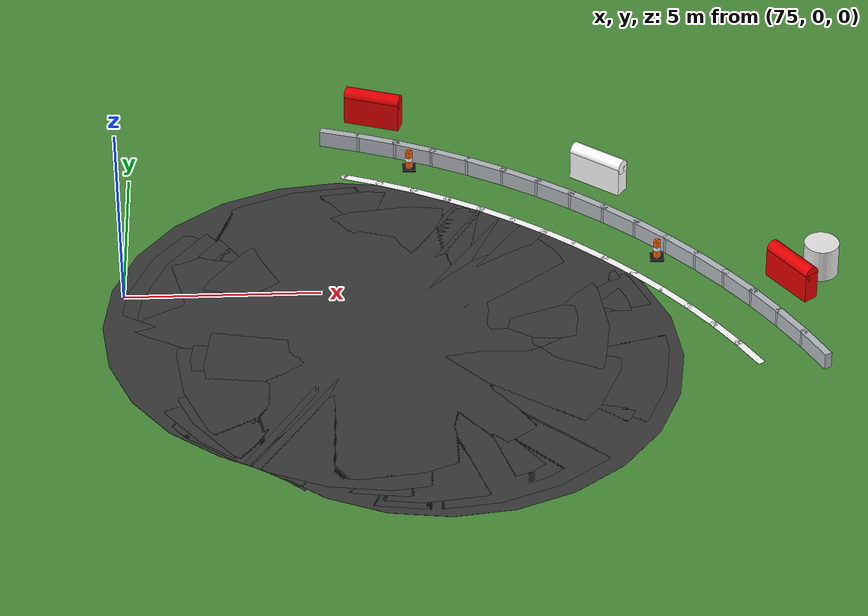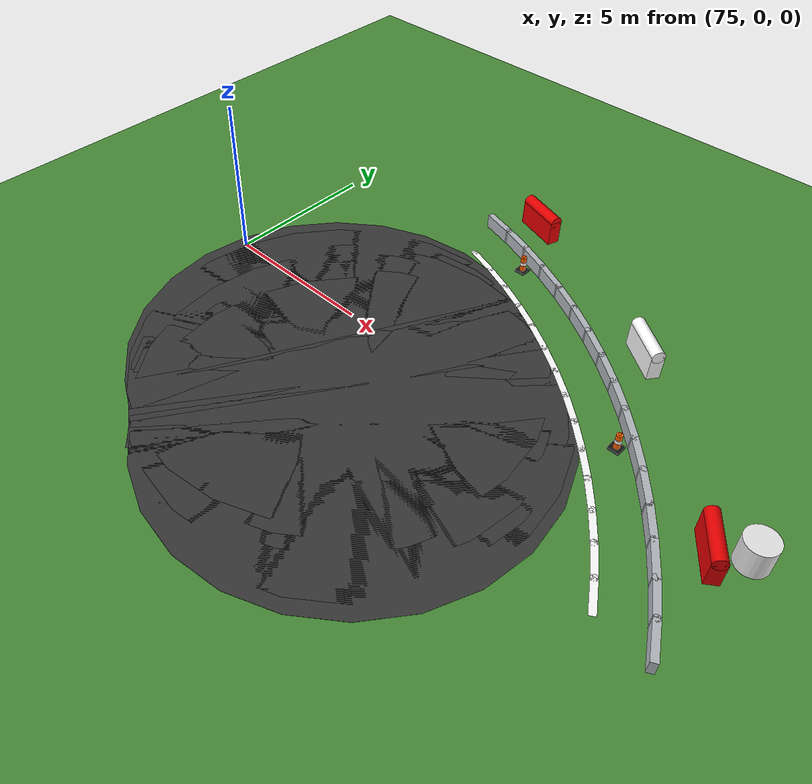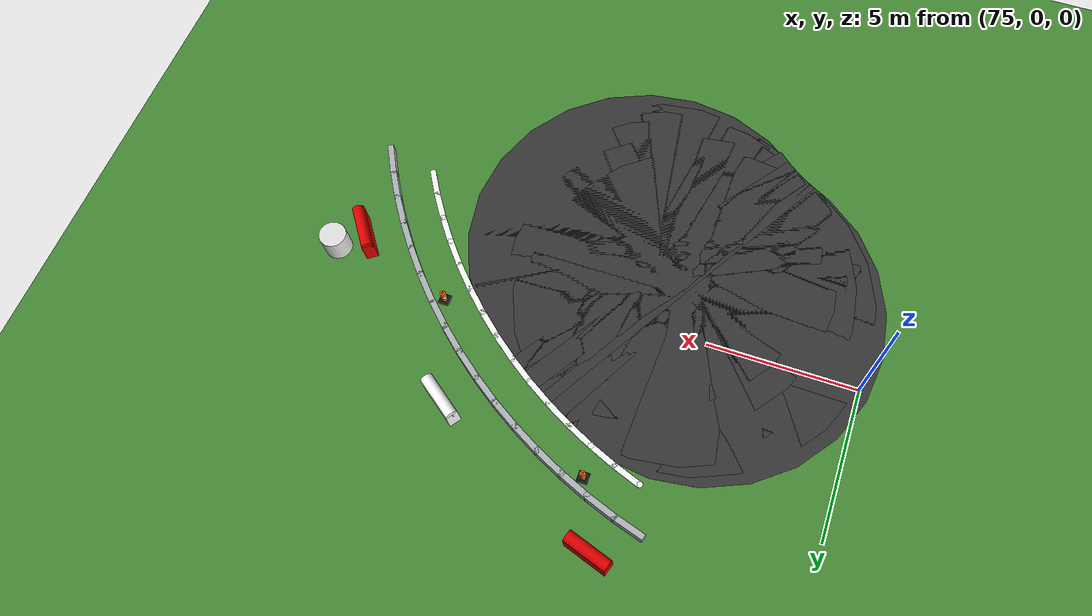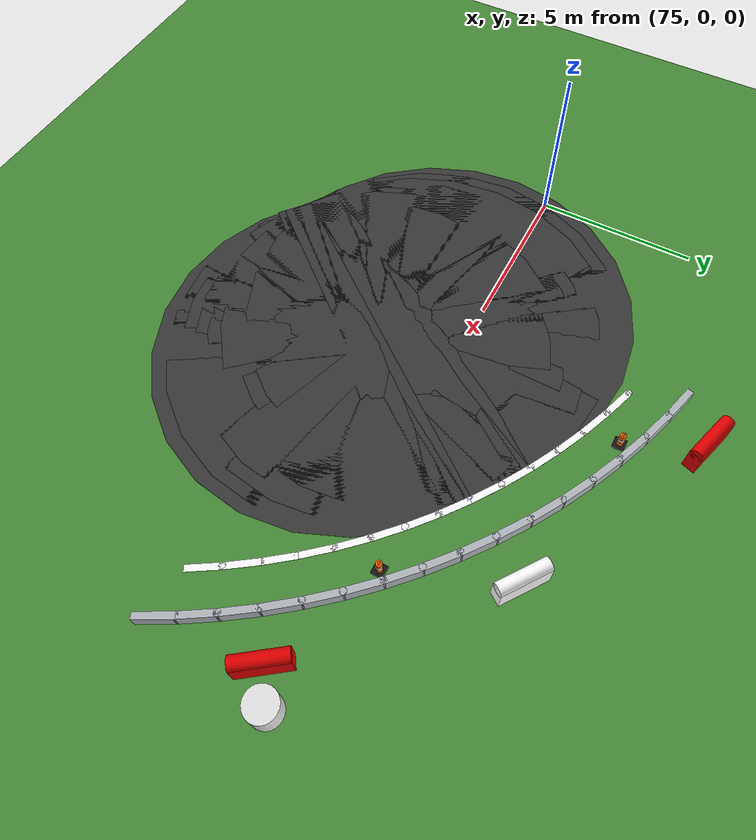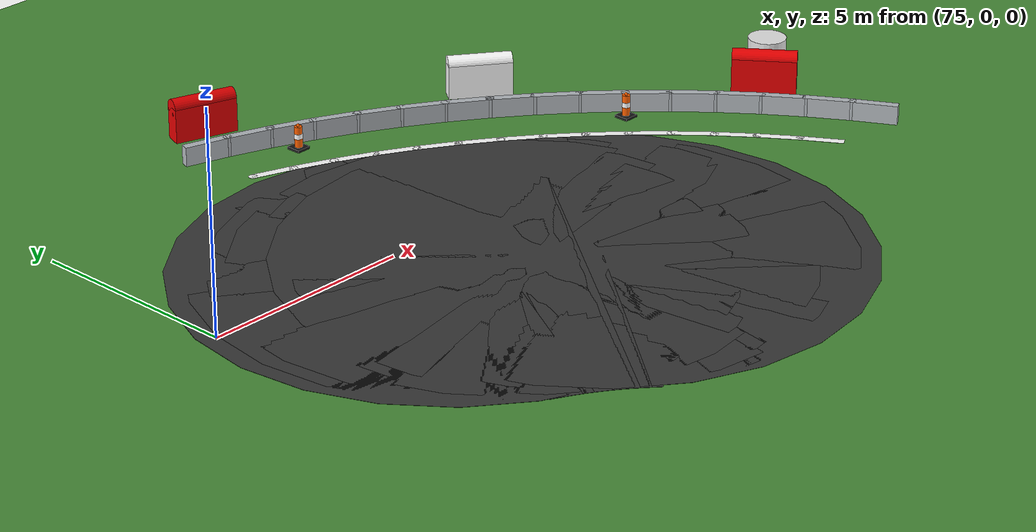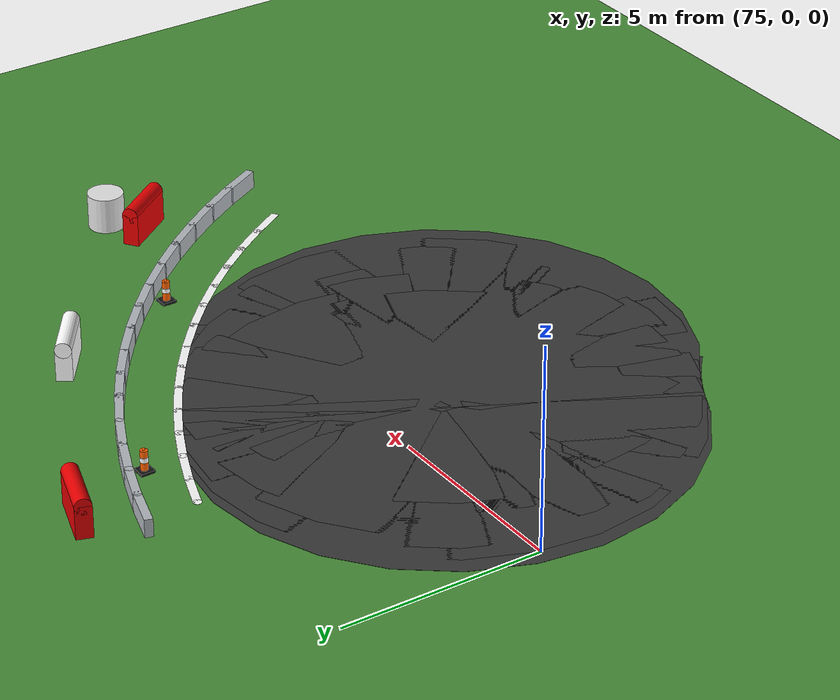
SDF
<sdf version="1.6">
 <world name="sem_silesia_ring_2026">
  <model name="ground_plane">
   <static>true</static>
   <link name="link">
    <collision name="collision">
     <geometry><plane><normal>0 0 1</normal><size>600 600</size></plane></geometry>
     <surface><friction><ode><mu>0.6</mu><mu2>0.6</mu2></ode></friction></surface>
    </collision>
    <visual name="visual">
     <geometry><plane><normal>0 0 1</normal><size>600 600</size></plane></geometry>
     <material><ambient>0.28 0.55 0.22 1</ambient><diffuse>0.28 0.55 0.22 1</diffuse></material>
    </visual>
   </link>
  </model>
  <model name="road_R_s69">
   <static>true</static>
   <pose>83.2007 -3.0661 0.0030 0 0 2.4260</pose>
   <link name="link">
    <visual name="v">
     <geometry><box><size>0.6957 12.0000 0.0060</size></box></geometry>
     <material><ambient>0.22 0.22 0.22 1</ambient><diffuse>0.22 0.22 0.22 1</diffuse></material>
    </visual>
    <collision name="c">
     <geometry><box><size>0.6957 12.0000 0.0060</size></box></geometry>
     <surface><friction><ode><mu>0.9</mu><mu2>0.9</mu2></ode></friction></surface>
    </collision>
   </link>
  </model>
  <model name="road_R_jnt70">
   <static>true</static>
   <pose>83.0348 -2.9244 0.0030 0 0 0</pose>
   <link name="link">
    <visual name="v">
     <geometry><cylinder><radius>6.0000</radius><length>0.0060</length></cylinder></geometry>
     <material><ambient>0.22 0.22 0.22 1</ambient><diffuse>0.22 0.22 0.22 1</diffuse></material>
    </visual>
    <collision name="c">
     <geometry><cylinder><radius>6.0000</radius><length>0.0060</length></cylinder></geometry>
     <surface><friction><ode><mu>0.9</mu><mu2>0.9</mu2></ode></friction></surface>
    </collision>
   </link>
  </model>
  <model name="road_R_s70">
   <static>true</static>
   <pose>82.8665 -2.7857 0.0030 0 0 2.4609</pose>
   <link name="link">
    <visual name="v">
     <geometry><box><size>0.6957 12.0000 0.0060</size></box></geometry>
     <material><ambient>0.22 0.22 0.22 1</ambient><diffuse>0.22 0.22 0.22 1</diffuse></material>
    </visual>
    <collision name="c">
     <geometry><box><size>0.6957 12.0000 0.0060</size></box></geometry>
     <surface><friction><ode><mu>0.9</mu><mu2>0.9</mu2></ode></friction></surface>
    </collision>
   </link>
  </model>
  <model name="road_R_jnt71">
   <static>true</static>
   <pose>82.6958 -2.6499 0.0030 0 0 0</pose>
   <link name="link">
    <visual name="v">
     <geometry><cylinder><radius>6.0000</radius><length>0.0060</length></cylinder></geometry>
     <material><ambient>0.22 0.22 0.22 1</ambient><diffuse>0.22 0.22 0.22 1</diffuse></material>
    </visual>
    <collision name="c">
     <geometry><cylinder><radius>6.0000</radius><length>0.0060</length></cylinder></geometry>
     <surface><friction><ode><mu>0.9</mu><mu2>0.9</mu2></ode></friction></surface>
    </collision>
   </link>
  </model>
  <model name="road_R_s71">
   <static>true</static>
   <pose>82.5227 -2.5171 0.0030 0 0 2.4958</pose>
   <link name="link">
    <visual name="v">
     <geometry><box><size>0.6957 12.0000 0.0060</size></box></geometry>
     <material><ambient>0.22 0.22 0.22 1</ambient><diffuse>0.22 0.22 0.22 1</diffuse></material>
    </visual>
    <collision name="c">
     <geometry><box><size>0.6957 12.0000 0.0060</size></box></geometry>
     <surface><friction><ode><mu>0.9</mu><mu2>0.9</mu2></ode></friction></surface>
    </collision>
   </link>
  </model>
  <model name="road_R_jnt72">
   <static>true</static>
   <pose>82.3473 -2.3873 0.0030 0 0 0</pose>
   <link name="link">
    <visual name="v">
     <geometry><cylinder><radius>6.0000</radius><length>0.0060</length></cylinder></geometry>
     <material><ambient>0.22 0.22 0.22 1</ambient><diffuse>0.22 0.22 0.22 1</diffuse></material>
    </visual>
    <collision name="c">
     <geometry><cylinder><radius>6.0000</radius><length>0.0060</length></cylinder></geometry>
     <surface><friction><ode><mu>0.9</mu><mu2>0.9</mu2></ode></friction></surface>
    </collision>
   </link>
  </model>
  <model name="road_R_s72">
   <static>true</static>
   <pose>82.1697 -2.2606 0.0030 0 0 2.5307</pose>
   <link name="link">
    <visual name="v">
     <geometry><box><size>0.6957 12.0000 0.0060</size></box></geometry>
     <material><ambient>0.22 0.22 0.22 1</ambient><diffuse>0.22 0.22 0.22 1</diffuse></material>
    </visual>
    <collision name="c">
     <geometry><box><size>0.6957 12.0000 0.0060</size></box></geometry>
     <surface><friction><ode><mu>0.9</mu><mu2>0.9</mu2></ode></friction></surface>
    </collision>
   </link>
  </model>
  <model name="road_R_jnt73">
   <static>true</static>
   <pose>81.9899 -2.1370 0.0030 0 0 0</pose>
   <link name="link">
    <visual name="v">
     <geometry><cylinder><radius>6.0000</radius><length>0.0060</length></cylinder></geometry>
     <material><ambient>0.22 0.22 0.22 1</ambient><diffuse>0.22 0.22 0.22 1</diffuse></material>
    </visual>
    <collision name="c">
     <geometry><cylinder><radius>6.0000</radius><length>0.0060</length></cylinder></geometry>
     <surface><friction><ode><mu>0.9</mu><mu2>0.9</mu2></ode></friction></surface>
    </collision>
   </link>
  </model>
  <model name="road_R_s73">
   <static>true</static>
   <pose>81.8080 -2.0166 0.0030 0 0 2.5656</pose>
   <link name="link">
    <visual name="v">
     <geometry><box><size>0.6957 12.0000 0.0060</size></box></geometry>
     <material><ambient>0.22 0.22 0.22 1</ambient><diffuse>0.22 0.22 0.22 1</diffuse></material>
    </visual>
    <collision name="c">
     <geometry><box><size>0.6957 12.0000 0.0060</size></box></geometry>
     <surface><friction><ode><mu>0.9</mu><mu2>0.9</mu2></ode></friction></surface>
    </collision>
   </link>
  </model>
  <model name="road_R_jnt74">
   <static>true</static>
   <pose>81.6240 -1.8994 0.0030 0 0 0</pose>
   <link name="link">
    <visual name="v">
     <geometry><cylinder><radius>6.0000</radius><length>0.0060</length></cylinder></geometry>
     <material><ambient>0.22 0.22 0.22 1</ambient><diffuse>0.22 0.22 0.22 1</diffuse></material>
    </visual>
    <collision name="c">
     <geometry><cylinder><radius>6.0000</radius><length>0.0060</length></cylinder></geometry>
     <surface><friction><ode><mu>0.9</mu><mu2>0.9</mu2></ode></friction></surface>
    </collision>
   </link>
  </model>
  <model name="road_R_s74">
   <static>true</static>
   <pose>81.4380 -1.7854 0.0030 0 0 2.6005</pose>
   <link name="link">
    <visual name="v">
     <geometry><box><size>0.6957 12.0000 0.0060</size></box></geometry>
     <material><ambient>0.22 0.22 0.22 1</ambient><diffuse>0.22 0.22 0.22 1</diffuse></material>
    </visual>
    <collision name="c">
     <geometry><box><size>0.6957 12.0000 0.0060</size></box></geometry>
     <surface><friction><ode><mu>0.9</mu><mu2>0.9</mu2></ode></friction></surface>
    </collision>
   </link>
  </model>
  <model name="road_R_jnt75">
   <static>true</static>
   <pose>81.2500 -1.6747 0.0030 0 0 0</pose>
   <link name="link">
    <visual name="v">
     <geometry><cylinder><radius>6.0000</radius><length>0.0060</length></cylinder></geometry>
     <material><ambient>0.22 0.22 0.22 1</ambient><diffuse>0.22 0.22 0.22 1</diffuse></material>
    </visual>
    <collision name="c">
     <geometry><cylinder><radius>6.0000</radius><length>0.0060</length></cylinder></geometry>
     <surface><friction><ode><mu>0.9</mu><mu2>0.9</mu2></ode></friction></surface>
    </collision>
   </link>
  </model>
  <model name="road_R_s75">
   <static>true</static>
   <pose>81.0601 -1.5673 0.0030 0 0 2.6354</pose>
   <link name="link">
    <visual name="v">
     <geometry><box><size>0.6957 12.0000 0.0060</size></box></geometry>
     <material><ambient>0.22 0.22 0.22 1</ambient><diffuse>0.22 0.22 0.22 1</diffuse></material>
    </visual>
    <collision name="c">
     <geometry><box><size>0.6957 12.0000 0.0060</size></box></geometry>
     <surface><friction><ode><mu>0.9</mu><mu2>0.9</mu2></ode></friction></surface>
    </collision>
   </link>
  </model>
  <model name="road_R_jnt76">
   <static>true</static>
   <pose>80.8684 -1.4632 0.0030 0 0 0</pose>
   <link name="link">
    <visual name="v">
     <geometry><cylinder><radius>6.0000</radius><length>0.0060</length></cylinder></geometry>
     <material><ambient>0.22 0.22 0.22 1</ambient><diffuse>0.22 0.22 0.22 1</diffuse></material>
    </visual>
    <collision name="c">
     <geometry><cylinder><radius>6.0000</radius><length>0.0060</length></cylinder></geometry>
     <surface><friction><ode><mu>0.9</mu><mu2>0.9</mu2></ode></friction></surface>
    </collision>
   </link>
  </model>
  <model name="road_R_s76">
   <static>true</static>
   <pose>80.6749 -1.3624 0.0030 0 0 2.6704</pose>
   <link name="link">
    <visual name="v">
     <geometry><box><size>0.6957 12.0000 0.0060</size></box></geometry>
     <material><ambient>0.22 0.22 0.22 1</ambient><diffuse>0.22 0.22 0.22 1</diffuse></material>
    </visual>
    <collision name="c">
     <geometry><box><size>0.6957 12.0000 0.0060</size></box></geometry>
     <surface><friction><ode><mu>0.9</mu><mu2>0.9</mu2></ode></friction></surface>
    </collision>
   </link>
  </model>
  <model name="road_R_jnt77">
   <static>true</static>
   <pose>80.4796 -1.2651 0.0030 0 0 0</pose>
   <link name="link">
    <visual name="v">
     <geometry><cylinder><radius>6.0000</radius><length>0.0060</length></cylinder></geometry>
     <material><ambient>0.22 0.22 0.22 1</ambient><diffuse>0.22 0.22 0.22 1</diffuse></material>
    </visual>
    <collision name="c">
     <geometry><cylinder><radius>6.0000</radius><length>0.0060</length></cylinder></geometry>
     <surface><friction><ode><mu>0.9</mu><mu2>0.9</mu2></ode></friction></surface>
    </collision>
   </link>
  </model>
  <model name="wl_Ro_s40">
   <static>true</static>
   <pose>90.6886 -2.8860 0.0050 0 0 2.1206</pose>
   <link name="link">
    <visual name="v">
     <geometry><box><size>1.0185 0.2000 0.0040</size></box></geometry>
     <material><ambient>1 1 1 1</ambient><diffuse>1 1 1 1</diffuse></material>
    </visual>
    <collision name="c">
     <geometry><box><size>1.0185 0.2000 0.0040</size></box></geometry>
     <surface><friction><ode><mu>0.9</mu><mu2>0.9</mu2></ode></friction></surface>
    </collision>
   </link>
  </model>
  <model name="wl_Ro_jnt41">
   <static>true</static>
   <pose>90.4315 -2.4786 0.0050 0 0 0</pose>
   <link name="link">
    <visual name="v">
     <geometry><cylinder><radius>0.1000</radius><length>0.0040</length></cylinder></geometry>
     <material><ambient>1 1 1 1</ambient><diffuse>1 1 1 1</diffuse></material>
    </visual>
    <collision name="c">
     <geometry><cylinder><radius>0.1000</radius><length>0.0040</length></cylinder></geometry>
     <surface><friction><ode><mu>0.9</mu><mu2>0.9</mu2></ode></friction></surface>
    </collision>
   </link>
  </model>
  <model name="wl_Ro_s41">
   <static>true</static>
   <pose>90.1639 -2.0781 0.0050 0 0 2.1729</pose>
   <link name="link">
    <visual name="v">
     <geometry><box><size>1.0185 0.2000 0.0040</size></box></geometry>
     <material><ambient>1 1 1 1</ambient><diffuse>1 1 1 1</diffuse></material>
    </visual>
    <collision name="c">
     <geometry><box><size>1.0185 0.2000 0.0040</size></box></geometry>
     <surface><friction><ode><mu>0.9</mu><mu2>0.9</mu2></ode></friction></surface>
    </collision>
   </link>
  </model>
  <model name="wl_Ro_jnt42">
   <static>true</static>
   <pose>89.8859 -1.6848 0.0050 0 0 0</pose>
   <link name="link">
    <visual name="v">
     <geometry><cylinder><radius>0.1000</radius><length>0.0040</length></cylinder></geometry>
     <material><ambient>1 1 1 1</ambient><diffuse>1 1 1 1</diffuse></material>
    </visual>
    <collision name="c">
     <geometry><cylinder><radius>0.1000</radius><length>0.0040</length></cylinder></geometry>
     <surface><friction><ode><mu>0.9</mu><mu2>0.9</mu2></ode></friction></surface>
    </collision>
   </link>
  </model>
  <model name="wl_Ro_s42">
   <static>true</static>
   <pose>89.5977 -1.2988 0.0050 0 0 2.2253</pose>
   <link name="link">
    <visual name="v">
     <geometry><box><size>1.0185 0.2000 0.0040</size></box></geometry>
     <material><ambient>1 1 1 1</ambient><diffuse>1 1 1 1</diffuse></material>
    </visual>
    <collision name="c">
     <geometry><box><size>1.0185 0.2000 0.0040</size></box></geometry>
     <surface><friction><ode><mu>0.9</mu><mu2>0.9</mu2></ode></friction></surface>
    </collision>
   </link>
  </model>
  <model name="wl_Ro_jnt43">
   <static>true</static>
   <pose>89.2995 -0.9205 0.0050 0 0 0</pose>
   <link name="link">
    <visual name="v">
     <geometry><cylinder><radius>0.1000</radius><length>0.0040</length></cylinder></geometry>
     <material><ambient>1 1 1 1</ambient><diffuse>1 1 1 1</diffuse></material>
    </visual>
    <collision name="c">
     <geometry><cylinder><radius>0.1000</radius><length>0.0040</length></cylinder></geometry>
     <surface><friction><ode><mu>0.9</mu><mu2>0.9</mu2></ode></friction></surface>
    </collision>
   </link>
  </model>
  <model name="wl_Ro_s43">
   <static>true</static>
   <pose>88.9915 -0.5502 0.0050 0 0 2.2777</pose>
   <link name="link">
    <visual name="v">
     <geometry><box><size>1.0185 0.2000 0.0040</size></box></geometry>
     <material><ambient>1 1 1 1</ambient><diffuse>1 1 1 1</diffuse></material>
    </visual>
    <collision name="c">
     <geometry><box><size>1.0185 0.2000 0.0040</size></box></geometry>
     <surface><friction><ode><mu>0.9</mu><mu2>0.9</mu2></ode></friction></surface>
    </collision>
   </link>
  </model>
  <model name="wl_Ro_jnt44">
   <static>true</static>
   <pose>88.6739 -0.1880 0.0050 0 0 0</pose>
   <link name="link">
    <visual name="v">
     <geometry><cylinder><radius>0.1000</radius><length>0.0040</length></cylinder></geometry>
     <material><ambient>1 1 1 1</ambient><diffuse>1 1 1 1</diffuse></material>
    </visual>
    <collision name="c">
     <geometry><cylinder><radius>0.1000</radius><length>0.0040</length></cylinder></geometry>
     <surface><friction><ode><mu>0.9</mu><mu2>0.9</mu2></ode></friction></surface>
    </collision>
   </link>
  </model>
  <model name="wl_Ro_s44">
   <static>true</static>
   <pose>88.3469 0.1657 0.0050 0 0 2.3300</pose>
   <link name="link">
    <visual name="v">
     <geometry><box><size>1.0185 0.2000 0.0040</size></box></geometry>
     <material><ambient>1 1 1 1</ambient><diffuse>1 1 1 1</diffuse></material>
    </visual>
    <collision name="c">
     <geometry><box><size>1.0185 0.2000 0.0040</size></box></geometry>
     <surface><friction><ode><mu>0.9</mu><mu2>0.9</mu2></ode></friction></surface>
    </collision>
   </link>
  </model>
  <model name="wl_Ro_jnt45">
   <static>true</static>
   <pose>88.0108 0.5108 0.0050 0 0 0</pose>
   <link name="link">
    <visual name="v">
     <geometry><cylinder><radius>0.1000</radius><length>0.0040</length></cylinder></geometry>
     <material><ambient>1 1 1 1</ambient><diffuse>1 1 1 1</diffuse></material>
    </visual>
    <collision name="c">
     <geometry><cylinder><radius>0.1000</radius><length>0.0040</length></cylinder></geometry>
     <surface><friction><ode><mu>0.9</mu><mu2>0.9</mu2></ode></friction></surface>
    </collision>
   </link>
  </model>
  <model name="wl_Ro_s45">
   <static>true</static>
   <pose>87.6657 0.8469 0.0050 0 0 2.3824</pose>
   <link name="link">
    <visual name="v">
     <geometry><box><size>1.0185 0.2000 0.0040</size></box></geometry>
     <material><ambient>1 1 1 1</ambient><diffuse>1 1 1 1</diffuse></material>
    </visual>
    <collision name="c">
     <geometry><box><size>1.0185 0.2000 0.0040</size></box></geometry>
     <surface><friction><ode><mu>0.9</mu><mu2>0.9</mu2></ode></friction></surface>
    </collision>
   </link>
  </model>
  <model name="wl_Ro_jnt46">
   <static>true</static>
   <pose>87.3120 1.1739 0.0050 0 0 0</pose>
   <link name="link">
    <visual name="v">
     <geometry><cylinder><radius>0.1000</radius><length>0.0040</length></cylinder></geometry>
     <material><ambient>1 1 1 1</ambient><diffuse>1 1 1 1</diffuse></material>
    </visual>
    <collision name="c">
     <geometry><cylinder><radius>0.1000</radius><length>0.0040</length></cylinder></geometry>
     <surface><friction><ode><mu>0.9</mu><mu2>0.9</mu2></ode></friction></surface>
    </collision>
   </link>
  </model>
  <model name="wl_Ro_s46">
   <static>true</static>
   <pose>86.9498 1.4915 0.0050 0 0 2.4347</pose>
   <link name="link">
    <visual name="v">
     <geometry><box><size>1.0185 0.2000 0.0040</size></box></geometry>
     <material><ambient>1 1 1 1</ambient><diffuse>1 1 1 1</diffuse></material>
    </visual>
    <collision name="c">
     <geometry><box><size>1.0185 0.2000 0.0040</size></box></geometry>
     <surface><friction><ode><mu>0.9</mu><mu2>0.9</mu2></ode></friction></surface>
    </collision>
   </link>
  </model>
  <model name="wl_Ro_jnt47">
   <static>true</static>
   <pose>86.5795 1.7995 0.0050 0 0 0</pose>
   <link name="link">
    <visual name="v">
     <geometry><cylinder><radius>0.1000</radius><length>0.0040</length></cylinder></geometry>
     <material><ambient>1 1 1 1</ambient><diffuse>1 1 1 1</diffuse></material>
    </visual>
    <collision name="c">
     <geometry><cylinder><radius>0.1000</radius><length>0.0040</length></cylinder></geometry>
     <surface><friction><ode><mu>0.9</mu><mu2>0.9</mu2></ode></friction></surface>
    </collision>
   </link>
  </model>
  <model name="wl_Ro_s47">
   <static>true</static>
   <pose>86.2012 2.0977 0.0050 0 0 2.4871</pose>
   <link name="link">
    <visual name="v">
     <geometry><box><size>1.0185 0.2000 0.0040</size></box></geometry>
     <material><ambient>1 1 1 1</ambient><diffuse>1 1 1 1</diffuse></material>
    </visual>
    <collision name="c">
     <geometry><box><size>1.0185 0.2000 0.0040</size></box></geometry>
     <surface><friction><ode><mu>0.9</mu><mu2>0.9</mu2></ode></friction></surface>
    </collision>
   </link>
  </model>
  <model name="wl_Ro_jnt48">
   <static>true</static>
   <pose>85.8152 2.3859 0.0050 0 0 0</pose>
   <link name="link">
    <visual name="v">
     <geometry><cylinder><radius>0.1000</radius><length>0.0040</length></cylinder></geometry>
     <material><ambient>1 1 1 1</ambient><diffuse>1 1 1 1</diffuse></material>
    </visual>
    <collision name="c">
     <geometry><cylinder><radius>0.1000</radius><length>0.0040</length></cylinder></geometry>
     <surface><friction><ode><mu>0.9</mu><mu2>0.9</mu2></ode></friction></surface>
    </collision>
   </link>
  </model>
  <model name="wl_Ro_s48">
   <static>true</static>
   <pose>85.4219 2.6639 0.0050 0 0 2.5395</pose>
   <link name="link">
    <visual name="v">
     <geometry><box><size>1.0185 0.2000 0.0040</size></box></geometry>
     <material><ambient>1 1 1 1</ambient><diffuse>1 1 1 1</diffuse></material>
    </visual>
    <collision name="c">
     <geometry><box><size>1.0185 0.2000 0.0040</size></box></geometry>
     <surface><friction><ode><mu>0.9</mu><mu2>0.9</mu2></ode></friction></surface>
    </collision>
   </link>
  </model>
  <model name="wl_Ro_jnt49">
   <static>true</static>
   <pose>85.0214 2.9315 0.0050 0 0 0</pose>
   <link name="link">
    <visual name="v">
     <geometry><cylinder><radius>0.1000</radius><length>0.0040</length></cylinder></geometry>
     <material><ambient>1 1 1 1</ambient><diffuse>1 1 1 1</diffuse></material>
    </visual>
    <collision name="c">
     <geometry><cylinder><radius>0.1000</radius><length>0.0040</length></cylinder></geometry>
     <surface><friction><ode><mu>0.9</mu><mu2>0.9</mu2></ode></friction></surface>
    </collision>
   </link>
  </model>
  <model name="wl_Ro_s49">
   <static>true</static>
   <pose>84.6140 3.1886 0.0050 0 0 2.5918</pose>
   <link name="link">
    <visual name="v">
     <geometry><box><size>1.0185 0.2000 0.0040</size></box></geometry>
     <material><ambient>1 1 1 1</ambient><diffuse>1 1 1 1</diffuse></material>
    </visual>
    <collision name="c">
     <geometry><box><size>1.0185 0.2000 0.0040</size></box></geometry>
     <surface><friction><ode><mu>0.9</mu><mu2>0.9</mu2></ode></friction></surface>
    </collision>
   </link>
  </model>
  <model name="wl_Ro_jnt50">
   <static>true</static>
   <pose>84.2000 3.4349 0.0050 0 0 0</pose>
   <link name="link">
    <visual name="v">
     <geometry><cylinder><radius>0.1000</radius><length>0.0040</length></cylinder></geometry>
     <material><ambient>1 1 1 1</ambient><diffuse>1 1 1 1</diffuse></material>
    </visual>
    <collision name="c">
     <geometry><cylinder><radius>0.1000</radius><length>0.0040</length></cylinder></geometry>
     <surface><friction><ode><mu>0.9</mu><mu2>0.9</mu2></ode></friction></surface>
    </collision>
   </link>
  </model>
  <model name="wl_Ro_s50">
   <static>true</static>
   <pose>83.7797 3.6702 0.0050 0 0 2.6442</pose>
   <link name="link">
    <visual name="v">
     <geometry><box><size>1.0185 0.2000 0.0040</size></box></geometry>
     <material><ambient>1 1 1 1</ambient><diffuse>1 1 1 1</diffuse></material>
    </visual>
    <collision name="c">
     <geometry><box><size>1.0185 0.2000 0.0040</size></box></geometry>
     <surface><friction><ode><mu>0.9</mu><mu2>0.9</mu2></ode></friction></surface>
    </collision>
   </link>
  </model>
  <model name="wl_Ro_jnt51">
   <static>true</static>
   <pose>83.3534 3.8945 0.0050 0 0 0</pose>
   <link name="link">
    <visual name="v">
     <geometry><cylinder><radius>0.1000</radius><length>0.0040</length></cylinder></geometry>
     <material><ambient>1 1 1 1</ambient><diffuse>1 1 1 1</diffuse></material>
    </visual>
    <collision name="c">
     <geometry><cylinder><radius>0.1000</radius><length>0.0040</length></cylinder></geometry>
     <surface><friction><ode><mu>0.9</mu><mu2>0.9</mu2></ode></friction></surface>
    </collision>
   </link>
  </model>
  <model name="wl_Ro_s51">
   <static>true</static>
   <pose>82.9214 4.1076 0.0050 0 0 2.6965</pose>
   <link name="link">
    <visual name="v">
     <geometry><box><size>1.0185 0.2000 0.0040</size></box></geometry>
     <material><ambient>1 1 1 1</ambient><diffuse>1 1 1 1</diffuse></material>
    </visual>
    <collision name="c">
     <geometry><box><size>1.0185 0.2000 0.0040</size></box></geometry>
     <surface><friction><ode><mu>0.9</mu><mu2>0.9</mu2></ode></friction></surface>
    </collision>
   </link>
  </model>
  <model name="wl_Ro_jnt52">
   <static>true</static>
   <pose>82.4840 4.3092 0.0050 0 0 0</pose>
   <link name="link">
    <visual name="v">
     <geometry><cylinder><radius>0.1000</radius><length>0.0040</length></cylinder></geometry>
     <material><ambient>1 1 1 1</ambient><diffuse>1 1 1 1</diffuse></material>
    </visual>
    <collision name="c">
     <geometry><cylinder><radius>0.1000</radius><length>0.0040</length></cylinder></geometry>
     <surface><friction><ode><mu>0.9</mu><mu2>0.9</mu2></ode></friction></surface>
    </collision>
   </link>
  </model>
  <model name="wl_Ro_s52">
   <static>true</static>
   <pose>82.0414 4.4994 0.0050 0 0 2.7489</pose>
   <link name="link">
    <visual name="v">
     <geometry><box><size>1.0185 0.2000 0.0040</size></box></geometry>
     <material><ambient>1 1 1 1</ambient><diffuse>1 1 1 1</diffuse></material>
    </visual>
    <collision name="c">
     <geometry><box><size>1.0185 0.2000 0.0040</size></box></geometry>
     <surface><friction><ode><mu>0.9</mu><mu2>0.9</mu2></ode></friction></surface>
    </collision>
   </link>
  </model>
  <model name="wl_Ro_jnt53">
   <static>true</static>
   <pose>81.5940 4.6779 0.0050 0 0 0</pose>
   <link name="link">
    <visual name="v">
     <geometry><cylinder><radius>0.1000</radius><length>0.0040</length></cylinder></geometry>
     <material><ambient>1 1 1 1</ambient><diffuse>1 1 1 1</diffuse></material>
    </visual>
    <collision name="c">
     <geometry><cylinder><radius>0.1000</radius><length>0.0040</length></cylinder></geometry>
     <surface><friction><ode><mu>0.9</mu><mu2>0.9</mu2></ode></friction></surface>
    </collision>
   </link>
  </model>
  <model name="wl_Ro_s53">
   <static>true</static>
   <pose>81.1420 4.8446 0.0050 0 0 2.8013</pose>
   <link name="link">
    <visual name="v">
     <geometry><box><size>1.0185 0.2000 0.0040</size></box></geometry>
     <material><ambient>1 1 1 1</ambient><diffuse>1 1 1 1</diffuse></material>
    </visual>
    <collision name="c">
     <geometry><box><size>1.0185 0.2000 0.0040</size></box></geometry>
     <surface><friction><ode><mu>0.9</mu><mu2>0.9</mu2></ode></friction></surface>
    </collision>
   </link>
  </model>
  <model name="wl_Ro_jnt54">
   <static>true</static>
   <pose>80.6859 4.9994 0.0050 0 0 0</pose>
   <link name="link">
    <visual name="v">
     <geometry><cylinder><radius>0.1000</radius><length>0.0040</length></cylinder></geometry>
     <material><ambient>1 1 1 1</ambient><diffuse>1 1 1 1</diffuse></material>
    </visual>
    <collision name="c">
     <geometry><cylinder><radius>0.1000</radius><length>0.0040</length></cylinder></geometry>
     <surface><friction><ode><mu>0.9</mu><mu2>0.9</mu2></ode></friction></surface>
    </collision>
   </link>
  </model>
  <model name="arm_Ro_s39">
   <static>true</static>
   <pose>92.3127 -3.1000 0.2250 0 0 2.0682</pose>
   <link name="link">
    <visual name="v">
     <geometry><box><size>1.0866 0.2000 0.4500</size></box></geometry>
     <material><ambient>0.70 0.72 0.74 1</ambient><diffuse>0.70 0.72 0.74 1</diffuse></material>
    </visual>
    <collision name="c">
     <geometry><box><size>1.0866 0.2000 0.4500</size></box></geometry>
     <surface><friction><ode><mu>0.9</mu><mu2>0.9</mu2></ode></friction></surface>
    </collision>
   </link>
  </model>
  <model name="arm_Ro_jnt40">
   <static>true</static>
   <pose>92.0607 -2.6500 0.2250 0 0 0</pose>
   <link name="link">
    <visual name="v">
     <geometry><cylinder><radius>0.1000</radius><length>0.4500</length></cylinder></geometry>
     <material><ambient>0.70 0.72 0.74 1</ambient><diffuse>0.70 0.72 0.74 1</diffuse></material>
    </visual>
    <collision name="c">
     <geometry><cylinder><radius>0.1000</radius><length>0.4500</length></cylinder></geometry>
     <surface><friction><ode><mu>0.9</mu><mu2>0.9</mu2></ode></friction></surface>
    </collision>
   </link>
  </model>
  <model name="arm_Ro_s40">
   <static>true</static>
   <pose>91.7970 -2.2068 0.2250 0 0 2.1206</pose>
   <link name="link">
    <visual name="v">
     <geometry><box><size>1.0866 0.2000 0.4500</size></box></geometry>
     <material><ambient>0.70 0.72 0.74 1</ambient><diffuse>0.70 0.72 0.74 1</diffuse></material>
    </visual>
    <collision name="c">
     <geometry><box><size>1.0866 0.2000 0.4500</size></box></geometry>
     <surface><friction><ode><mu>0.9</mu><mu2>0.9</mu2></ode></friction></surface>
    </collision>
   </link>
  </model>
  <model name="arm_Ro_jnt41">
   <static>true</static>
   <pose>91.5218 -1.7706 0.2250 0 0 0</pose>
   <link name="link">
    <visual name="v">
     <geometry><cylinder><radius>0.1000</radius><length>0.4500</length></cylinder></geometry>
     <material><ambient>0.70 0.72 0.74 1</ambient><diffuse>0.70 0.72 0.74 1</diffuse></material>
    </visual>
    <collision name="c">
     <geometry><cylinder><radius>0.1000</radius><length>0.4500</length></cylinder></geometry>
     <surface><friction><ode><mu>0.9</mu><mu2>0.9</mu2></ode></friction></surface>
    </collision>
   </link>
  </model>
  <model name="arm_Ro_s41">
   <static>true</static>
   <pose>91.2353 -1.3418 0.2250 0 0 2.1729</pose>
   <link name="link">
    <visual name="v">
     <geometry><box><size>1.0866 0.2000 0.4500</size></box></geometry>
     <material><ambient>0.70 0.72 0.74 1</ambient><diffuse>0.70 0.72 0.74 1</diffuse></material>
    </visual>
    <collision name="c">
     <geometry><box><size>1.0866 0.2000 0.4500</size></box></geometry>
     <surface><friction><ode><mu>0.9</mu><mu2>0.9</mu2></ode></friction></surface>
    </collision>
   </link>
  </model>
  <model name="arm_Ro_jnt42">
   <static>true</static>
   <pose>90.9376 -0.9206 0.2250 0 0 0</pose>
   <link name="link">
    <visual name="v">
     <geometry><cylinder><radius>0.1000</radius><length>0.4500</length></cylinder></geometry>
     <material><ambient>0.70 0.72 0.74 1</ambient><diffuse>0.70 0.72 0.74 1</diffuse></material>
    </visual>
    <collision name="c">
     <geometry><cylinder><radius>0.1000</radius><length>0.4500</length></cylinder></geometry>
     <surface><friction><ode><mu>0.9</mu><mu2>0.9</mu2></ode></friction></surface>
    </collision>
   </link>
  </model>
  <model name="arm_Ro_s42">
   <static>true</static>
   <pose>90.6291 -0.5074 0.2250 0 0 2.2253</pose>
   <link name="link">
    <visual name="v">
     <geometry><box><size>1.0866 0.2000 0.4500</size></box></geometry>
     <material><ambient>0.70 0.72 0.74 1</ambient><diffuse>0.70 0.72 0.74 1</diffuse></material>
    </visual>
    <collision name="c">
     <geometry><box><size>1.0866 0.2000 0.4500</size></box></geometry>
     <surface><friction><ode><mu>0.9</mu><mu2>0.9</mu2></ode></friction></surface>
    </collision>
   </link>
  </model>
  <model name="arm_Ro_jnt43">
   <static>true</static>
   <pose>90.3098 -0.1024 0.2250 0 0 0</pose>
   <link name="link">
    <visual name="v">
     <geometry><cylinder><radius>0.1000</radius><length>0.4500</length></cylinder></geometry>
     <material><ambient>0.70 0.72 0.74 1</ambient><diffuse>0.70 0.72 0.74 1</diffuse></material>
    </visual>
    <collision name="c">
     <geometry><cylinder><radius>0.1000</radius><length>0.4500</length></cylinder></geometry>
     <surface><friction><ode><mu>0.9</mu><mu2>0.9</mu2></ode></friction></surface>
    </collision>
   </link>
  </model>
  <model name="arm_Ro_s43">
   <static>true</static>
   <pose>89.9800 0.2941 0.2250 0 0 2.2777</pose>
   <link name="link">
    <visual name="v">
     <geometry><box><size>1.0866 0.2000 0.4500</size></box></geometry>
     <material><ambient>0.70 0.72 0.74 1</ambient><diffuse>0.70 0.72 0.74 1</diffuse></material>
    </visual>
    <collision name="c">
     <geometry><box><size>1.0866 0.2000 0.4500</size></box></geometry>
     <surface><friction><ode><mu>0.9</mu><mu2>0.9</mu2></ode></friction></surface>
    </collision>
   </link>
  </model>
  <model name="arm_Ro_jnt44">
   <static>true</static>
   <pose>89.6400 0.6819 0.2250 0 0 0</pose>
   <link name="link">
    <visual name="v">
     <geometry><cylinder><radius>0.1000</radius><length>0.4500</length></cylinder></geometry>
     <material><ambient>0.70 0.72 0.74 1</ambient><diffuse>0.70 0.72 0.74 1</diffuse></material>
    </visual>
    <collision name="c">
     <geometry><cylinder><radius>0.1000</radius><length>0.4500</length></cylinder></geometry>
     <surface><friction><ode><mu>0.9</mu><mu2>0.9</mu2></ode></friction></surface>
    </collision>
   </link>
  </model>
  <model name="arm_Ro_s44">
   <static>true</static>
   <pose>89.2899 1.0606 0.2250 0 0 2.3300</pose>
   <link name="link">
    <visual name="v">
     <geometry><box><size>1.0866 0.2000 0.4500</size></box></geometry>
     <material><ambient>0.70 0.72 0.74 1</ambient><diffuse>0.70 0.72 0.74 1</diffuse></material>
    </visual>
    <collision name="c">
     <geometry><box><size>1.0866 0.2000 0.4500</size></box></geometry>
     <surface><friction><ode><mu>0.9</mu><mu2>0.9</mu2></ode></friction></surface>
    </collision>
   </link>
  </model>
  <model name="arm_Ro_jnt45">
   <static>true</static>
   <pose>88.9300 1.4300 0.2250 0 0 0</pose>
   <link name="link">
    <visual name="v">
     <geometry><cylinder><radius>0.1000</radius><length>0.4500</length></cylinder></geometry>
     <material><ambient>0.70 0.72 0.74 1</ambient><diffuse>0.70 0.72 0.74 1</diffuse></material>
    </visual>
    <collision name="c">
     <geometry><cylinder><radius>0.1000</radius><length>0.4500</length></cylinder></geometry>
     <surface><friction><ode><mu>0.9</mu><mu2>0.9</mu2></ode></friction></surface>
    </collision>
   </link>
  </model>
  <model name="arm_Ro_s45">
   <static>true</static>
   <pose>88.5606 1.7899 0.2250 0 0 2.3824</pose>
   <link name="link">
    <visual name="v">
     <geometry><box><size>1.0866 0.2000 0.4500</size></box></geometry>
     <material><ambient>0.70 0.72 0.74 1</ambient><diffuse>0.70 0.72 0.74 1</diffuse></material>
    </visual>
    <collision name="c">
     <geometry><box><size>1.0866 0.2000 0.4500</size></box></geometry>
     <surface><friction><ode><mu>0.9</mu><mu2>0.9</mu2></ode></friction></surface>
    </collision>
   </link>
  </model>
  <model name="arm_Ro_jnt46">
   <static>true</static>
   <pose>88.1819 2.1400 0.2250 0 0 0</pose>
   <link name="link">
    <visual name="v">
     <geometry><cylinder><radius>0.1000</radius><length>0.4500</length></cylinder></geometry>
     <material><ambient>0.70 0.72 0.74 1</ambient><diffuse>0.70 0.72 0.74 1</diffuse></material>
    </visual>
    <collision name="c">
     <geometry><cylinder><radius>0.1000</radius><length>0.4500</length></cylinder></geometry>
     <surface><friction><ode><mu>0.9</mu><mu2>0.9</mu2></ode></friction></surface>
    </collision>
   </link>
  </model>
  <model name="arm_Ro_s46">
   <static>true</static>
   <pose>87.7941 2.4800 0.2250 0 0 2.4347</pose>
   <link name="link">
    <visual name="v">
     <geometry><box><size>1.0866 0.2000 0.4500</size></box></geometry>
     <material><ambient>0.70 0.72 0.74 1</ambient><diffuse>0.70 0.72 0.74 1</diffuse></material>
    </visual>
    <collision name="c">
     <geometry><box><size>1.0866 0.2000 0.4500</size></box></geometry>
     <surface><friction><ode><mu>0.9</mu><mu2>0.9</mu2></ode></friction></surface>
    </collision>
   </link>
  </model>
  <model name="arm_Ro_jnt47">
   <static>true</static>
   <pose>87.3976 2.8098 0.2250 0 0 0</pose>
   <link name="link">
    <visual name="v">
     <geometry><cylinder><radius>0.1000</radius><length>0.4500</length></cylinder></geometry>
     <material><ambient>0.70 0.72 0.74 1</ambient><diffuse>0.70 0.72 0.74 1</diffuse></material>
    </visual>
    <collision name="c">
     <geometry><cylinder><radius>0.1000</radius><length>0.4500</length></cylinder></geometry>
     <surface><friction><ode><mu>0.9</mu><mu2>0.9</mu2></ode></friction></surface>
    </collision>
   </link>
  </model>
  <model name="arm_Ro_s47">
   <static>true</static>
   <pose>86.9926 3.1291 0.2250 0 0 2.4871</pose>
   <link name="link">
    <visual name="v">
     <geometry><box><size>1.0866 0.2000 0.4500</size></box></geometry>
     <material><ambient>0.70 0.72 0.74 1</ambient><diffuse>0.70 0.72 0.74 1</diffuse></material>
    </visual>
    <collision name="c">
     <geometry><box><size>1.0866 0.2000 0.4500</size></box></geometry>
     <surface><friction><ode><mu>0.9</mu><mu2>0.9</mu2></ode></friction></surface>
    </collision>
   </link>
  </model>
  <model name="arm_Ro_jnt48">
   <static>true</static>
   <pose>86.5794 3.4376 0.2250 0 0 0</pose>
   <link name="link">
    <visual name="v">
     <geometry><cylinder><radius>0.1000</radius><length>0.4500</length></cylinder></geometry>
     <material><ambient>0.70 0.72 0.74 1</ambient><diffuse>0.70 0.72 0.74 1</diffuse></material>
    </visual>
    <collision name="c">
     <geometry><cylinder><radius>0.1000</radius><length>0.4500</length></cylinder></geometry>
     <surface><friction><ode><mu>0.9</mu><mu2>0.9</mu2></ode></friction></surface>
    </collision>
   </link>
  </model>
  <model name="arm_Ro_s48">
   <static>true</static>
   <pose>86.1582 3.7353 0.2250 0 0 2.5395</pose>
   <link name="link">
    <visual name="v">
     <geometry><box><size>1.0866 0.2000 0.4500</size></box></geometry>
     <material><ambient>0.70 0.72 0.74 1</ambient><diffuse>0.70 0.72 0.74 1</diffuse></material>
    </visual>
    <collision name="c">
     <geometry><box><size>1.0866 0.2000 0.4500</size></box></geometry>
     <surface><friction><ode><mu>0.9</mu><mu2>0.9</mu2></ode></friction></surface>
    </collision>
   </link>
  </model>
  <model name="arm_Ro_jnt49">
   <static>true</static>
   <pose>85.7294 4.0218 0.2250 0 0 0</pose>
   <link name="link">
    <visual name="v">
     <geometry><cylinder><radius>0.1000</radius><length>0.4500</length></cylinder></geometry>
     <material><ambient>0.70 0.72 0.74 1</ambient><diffuse>0.70 0.72 0.74 1</diffuse></material>
    </visual>
    <collision name="c">
     <geometry><cylinder><radius>0.1000</radius><length>0.4500</length></cylinder></geometry>
     <surface><friction><ode><mu>0.9</mu><mu2>0.9</mu2></ode></friction></surface>
    </collision>
   </link>
  </model>
  <model name="arm_Ro_s49">
   <static>true</static>
   <pose>85.2932 4.2970 0.2250 0 0 2.5918</pose>
   <link name="link">
    <visual name="v">
     <geometry><box><size>1.0866 0.2000 0.4500</size></box></geometry>
     <material><ambient>0.70 0.72 0.74 1</ambient><diffuse>0.70 0.72 0.74 1</diffuse></material>
    </visual>
    <collision name="c">
     <geometry><box><size>1.0866 0.2000 0.4500</size></box></geometry>
     <surface><friction><ode><mu>0.9</mu><mu2>0.9</mu2></ode></friction></surface>
    </collision>
   </link>
  </model>
  <model name="arm_Ro_jnt50">
   <static>true</static>
   <pose>84.8500 4.5607 0.2250 0 0 0</pose>
   <link name="link">
    <visual name="v">
     <geometry><cylinder><radius>0.1000</radius><length>0.4500</length></cylinder></geometry>
     <material><ambient>0.70 0.72 0.74 1</ambient><diffuse>0.70 0.72 0.74 1</diffuse></material>
    </visual>
    <collision name="c">
     <geometry><cylinder><radius>0.1000</radius><length>0.4500</length></cylinder></geometry>
     <surface><friction><ode><mu>0.9</mu><mu2>0.9</mu2></ode></friction></surface>
    </collision>
   </link>
  </model>
  <model name="arm_Ro_s50">
   <static>true</static>
   <pose>84.4000 4.8127 0.2250 0 0 2.6442</pose>
   <link name="link">
    <visual name="v">
     <geometry><box><size>1.0866 0.2000 0.4500</size></box></geometry>
     <material><ambient>0.70 0.72 0.74 1</ambient><diffuse>0.70 0.72 0.74 1</diffuse></material>
    </visual>
    <collision name="c">
     <geometry><box><size>1.0866 0.2000 0.4500</size></box></geometry>
     <surface><friction><ode><mu>0.9</mu><mu2>0.9</mu2></ode></friction></surface>
    </collision>
   </link>
  </model>
  <model name="arm_Ro_jnt51">
   <static>true</static>
   <pose>83.9436 5.0528 0.2250 0 0 0</pose>
   <link name="link">
    <visual name="v">
     <geometry><cylinder><radius>0.1000</radius><length>0.4500</length></cylinder></geometry>
     <material><ambient>0.70 0.72 0.74 1</ambient><diffuse>0.70 0.72 0.74 1</diffuse></material>
    </visual>
    <collision name="c">
     <geometry><cylinder><radius>0.1000</radius><length>0.4500</length></cylinder></geometry>
     <surface><friction><ode><mu>0.9</mu><mu2>0.9</mu2></ode></friction></surface>
    </collision>
   </link>
  </model>
  <model name="arm_Ro_s51">
   <static>true</static>
   <pose>83.4811 5.2809 0.2250 0 0 2.6965</pose>
   <link name="link">
    <visual name="v">
     <geometry><box><size>1.0866 0.2000 0.4500</size></box></geometry>
     <material><ambient>0.70 0.72 0.74 1</ambient><diffuse>0.70 0.72 0.74 1</diffuse></material>
    </visual>
    <collision name="c">
     <geometry><box><size>1.0866 0.2000 0.4500</size></box></geometry>
     <surface><friction><ode><mu>0.9</mu><mu2>0.9</mu2></ode></friction></surface>
    </collision>
   </link>
  </model>
  <model name="arm_Ro_jnt52">
   <static>true</static>
   <pose>83.0127 5.4968 0.2250 0 0 0</pose>
   <link name="link">
    <visual name="v">
     <geometry><cylinder><radius>0.1000</radius><length>0.4500</length></cylinder></geometry>
     <material><ambient>0.70 0.72 0.74 1</ambient><diffuse>0.70 0.72 0.74 1</diffuse></material>
    </visual>
    <collision name="c">
     <geometry><cylinder><radius>0.1000</radius><length>0.4500</length></cylinder></geometry>
     <surface><friction><ode><mu>0.9</mu><mu2>0.9</mu2></ode></friction></surface>
    </collision>
   </link>
  </model>
  <model name="arm_Ro_s52">
   <static>true</static>
   <pose>82.5389 5.7004 0.2250 0 0 2.7489</pose>
   <link name="link">
    <visual name="v">
     <geometry><box><size>1.0866 0.2000 0.4500</size></box></geometry>
     <material><ambient>0.70 0.72 0.74 1</ambient><diffuse>0.70 0.72 0.74 1</diffuse></material>
    </visual>
    <collision name="c">
     <geometry><box><size>1.0866 0.2000 0.4500</size></box></geometry>
     <surface><friction><ode><mu>0.9</mu><mu2>0.9</mu2></ode></friction></surface>
    </collision>
   </link>
  </model>
  <model name="arm_Ro_jnt53">
   <static>true</static>
   <pose>82.0598 5.8915 0.2250 0 0 0</pose>
   <link name="link">
    <visual name="v">
     <geometry><cylinder><radius>0.1000</radius><length>0.4500</length></cylinder></geometry>
     <material><ambient>0.70 0.72 0.74 1</ambient><diffuse>0.70 0.72 0.74 1</diffuse></material>
    </visual>
    <collision name="c">
     <geometry><cylinder><radius>0.1000</radius><length>0.4500</length></cylinder></geometry>
     <surface><friction><ode><mu>0.9</mu><mu2>0.9</mu2></ode></friction></surface>
    </collision>
   </link>
  </model>
  <model name="arm_Ro_s53">
   <static>true</static>
   <pose>81.5760 6.0700 0.2250 0 0 2.8013</pose>
   <link name="link">
    <visual name="v">
     <geometry><box><size>1.0866 0.2000 0.4500</size></box></geometry>
     <material><ambient>0.70 0.72 0.74 1</ambient><diffuse>0.70 0.72 0.74 1</diffuse></material>
    </visual>
    <collision name="c">
     <geometry><box><size>1.0866 0.2000 0.4500</size></box></geometry>
     <surface><friction><ode><mu>0.9</mu><mu2>0.9</mu2></ode></friction></surface>
    </collision>
   </link>
  </model>
  <model name="arm_Ro_jnt54">
   <static>true</static>
   <pose>81.0876 6.2358 0.2250 0 0 0</pose>
   <link name="link">
    <visual name="v">
     <geometry><cylinder><radius>0.1000</radius><length>0.4500</length></cylinder></geometry>
     <material><ambient>0.70 0.72 0.74 1</ambient><diffuse>0.70 0.72 0.74 1</diffuse></material>
    </visual>
    <collision name="c">
     <geometry><cylinder><radius>0.1000</radius><length>0.4500</length></cylinder></geometry>
     <surface><friction><ode><mu>0.9</mu><mu2>0.9</mu2></ode></friction></surface>
    </collision>
   </link>
  </model>
  <model name="arm_Ro_s54">
   <static>true</static>
   <pose>80.5951 6.3887 0.2250 0 0 2.8536</pose>
   <link name="link">
    <visual name="v">
     <geometry><box><size>1.0866 0.2000 0.4500</size></box></geometry>
     <material><ambient>0.70 0.72 0.74 1</ambient><diffuse>0.70 0.72 0.74 1</diffuse></material>
    </visual>
    <collision name="c">
     <geometry><box><size>1.0866 0.2000 0.4500</size></box></geometry>
     <surface><friction><ode><mu>0.9</mu><mu2>0.9</mu2></ode></friction></surface>
    </collision>
   </link>
  </model>
  <model name="p_bar_R_arc_6">
   <static>true</static>
   <pose>91.9894 -0.1565 0.4 0 0 2.1991</pose>
   <link name="link">
    <visual name="v">
     <geometry><box><size>1.5 0.4 0.8</size></box></geometry>
     <material><ambient>0.9 0 0 1</ambient><diffuse>0.9 0 0 1</diffuse></material>
    </visual>
    <visual name="top_round">
     <pose>0 0 0.4 0 1.5708 0</pose>
     <geometry><cylinder><radius>0.2</radius><length>1.5</length></cylinder></geometry>
     <material><ambient>0.9 0 0 1</ambient><diffuse>0.9 0 0 1</diffuse></material>
    </visual>
    <collision name="c"><geometry><box><size>1.5 0.4 0.8</size></box></geometry></collision>
   </link>
  </model>
  <model name="p_bar_R_arc_7">
   <static>true</static>
   <pose>87.3435 4.4894 0.4 0 0 2.5133</pose>
   <link name="link">
    <visual name="v">
     <geometry><box><size>1.5 0.4 0.8</size></box></geometry>
     <material><ambient>1 1 1 1</ambient><diffuse>1 1 1 1</diffuse></material>
    </visual>
    <visual name="top_round">
     <pose>0 0 0.4 0 1.5708 0</pose>
     <geometry><cylinder><radius>0.2</radius><length>1.5</length></cylinder></geometry>
     <material><ambient>1 1 1 1</ambient><diffuse>1 1 1 1</diffuse></material>
    </visual>
    <collision name="c"><geometry><box><size>1.5 0.4 0.8</size></box></geometry></collision>
   </link>
  </model>
  <model name="p_bar_R_arc_8">
   <static>true</static>
   <pose>81.4894 7.4722 0.4 0 0 2.8274</pose>
   <link name="link">
    <visual name="v">
     <geometry><box><size>1.5 0.4 0.8</size></box></geometry>
     <material><ambient>0.9 0 0 1</ambient><diffuse>0.9 0 0 1</diffuse></material>
    </visual>
    <visual name="top_round">
     <pose>0 0 0.4 0 1.5708 0</pose>
     <geometry><cylinder><radius>0.2</radius><length>1.5</length></cylinder></geometry>
     <material><ambient>0.9 0 0 1</ambient><diffuse>0.9 0 0 1</diffuse></material>
    </visual>
    <collision name="c"><geometry><box><size>1.5 0.4 0.8</size></box></geometry></collision>
   </link>
  </model>
  <model name="cn_Ro_6">
   <static>true</static>
   <pose>88.6472 1.1472 0 0 0 0</pose>
   <link name="link">
    <visual name="base">
     <pose>0 0 0.03 0 0 0</pose>
     <geometry><box><size>0.35 0.35 0.06</size></box></geometry>
     <material><ambient>0.08 0.08 0.08 1</ambient><diffuse>0.08 0.08 0.08 1</diffuse></material>
    </visual>
    <visual name="body">
     <pose>0 0 0.30 0 0 0</pose>
     <geometry><cylinder><radius>0.09</radius><length>0.50</length></cylinder></geometry>
     <material><ambient>1.0 0.38 0.0 1</ambient><diffuse>1.0 0.38 0.0 1</diffuse></material>
    </visual>
    <visual name="stripe">
     <pose>0 0 0.32 0 0 0</pose>
     <geometry><cylinder><radius>0.095</radius><length>0.12</length></cylinder></geometry>
     <material><ambient>1 1 1 1</ambient><diffuse>1 1 1 1</diffuse></material>
    </visual>
    <visual name="tip">
     <pose>0 0 0.57 0 0 0</pose>
     <geometry><sphere><radius>0.04</radius></sphere></geometry>
     <material><ambient>1.0 0.38 0.0 1</ambient><diffuse>1.0 0.38 0.0 1</diffuse></material>
    </visual>
    <collision name="c">
     <pose>0 0 0.28 0 0 0</pose>
     <geometry><cylinder><radius>0.09</radius><length>0.56</length></cylinder></geometry>
    </collision>
   </link>
  </model>
  <model name="cn_Ro_7">
   <static>true</static>
   <pose>82.3858 5.3309 0 0 0 0</pose>
   <link name="link">
    <visual name="base">
     <pose>0 0 0.03 0 0 0</pose>
     <geometry><box><size>0.35 0.35 0.06</size></box></geometry>
     <material><ambient>0.08 0.08 0.08 1</ambient><diffuse>0.08 0.08 0.08 1</diffuse></material>
    </visual>
    <visual name="body">
     <pose>0 0 0.30 0 0 0</pose>
     <geometry><cylinder><radius>0.09</radius><length>0.50</length></cylinder></geometry>
     <material><ambient>1.0 0.38 0.0 1</ambient><diffuse>1.0 0.38 0.0 1</diffuse></material>
    </visual>
    <visual name="stripe">
     <pose>0 0 0.32 0 0 0</pose>
     <geometry><cylinder><radius>0.095</radius><length>0.12</length></cylinder></geometry>
     <material><ambient>1 1 1 1</ambient><diffuse>1 1 1 1</diffuse></material>
    </visual>
    <visual name="tip">
     <pose>0 0 0.57 0 0 0</pose>
     <geometry><sphere><radius>0.04</radius></sphere></geometry>
     <material><ambient>1.0 0.38 0.0 1</ambient><diffuse>1.0 0.38 0.0 1</diffuse></material>
    </visual>
    <collision name="c">
     <pose>0 0 0.28 0 0 0</pose>
     <geometry><cylinder><radius>0.09</radius><length>0.56</length></cylinder></geometry>
    </collision>
   </link>
  </model>
  <model name="tire_ring_5">
   <static>true</static>
   <pose>92.7984 0.4313 0.4500 0 0 0</pose>
   <link name="link">
    <visual name="v">
     <geometry><cylinder><radius>0.4500</radius><length>0.9000</length></cylinder></geometry>
     <material><ambient>0.90 0.90 0.90 1</ambient><diffuse>0.90 0.90 0.90 1</diffuse></material>
    </visual>
    <collision name="c">
     <geometry><cylinder><radius>0.4500</radius><length>0.9000</length></cylinder></geometry>
     <surface><friction><ode><mu>0.9</mu><mu2>0.9</mu2></ode></friction></surface>
    </collision>
   </link>
  </model>
 </world>
</sdf>
